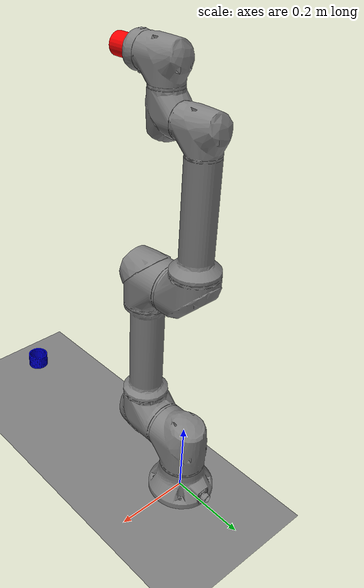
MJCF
<mujoco model="rb5 peg-in-hole scene">

  <include file="rb5_peg_in_hole.xml"/>

  <visual>
    <headlight diffuse="0.7 0.7 0.7"
               ambient="0.35 0.35 0.35"
               specular="0.15 0.15 0.15"/>
    <rgba haze="0.15 0.15 0.15 1"/>
    <global azimuth="135" elevation="-20"/>
    <quality shadowsize="16384"/>
  </visual>

  <asset>
    <texture type="skybox"
             builtin="gradient"
             rgb1="0.85 0.90 0.95"
             rgb2="0.20 0.25 0.35"
             width="512"
             height="3072"/>
  </asset>

  <worldbody>
    <!-- lights -->
    <light name="main_light"
           pos="0.0 -0.2 2.2"
           dir="0.0 -0.1 -1.0"
           directional="true"/>

    <light name="side_light"
           pos="0.8 0.4 1.6"
           dir="-0.4 -0.5 -1.0"
           directional="true"
           diffuse="0.5 0.5 0.5"
           specular="0.1 0.1 0.1"/>

    <!-- cameras -->
    <camera name="overview"
            pos="1.10 0.40 1.35"
            xyaxes="0 -1 0 0 0 1"/>

    <camera name="hole_closeup"
            pos="0.35 -0.30 0.85"
            xyaxes="0 -1 0 0 0 1"/>

    <!-- visual only -->
    <geom name="hole_block_visual"
            type="box"
            pos="0.00 -0.68 0.0"
            quat="0.70710678 0.70710678 0 0"
            size="0.030 0.020 0.030"
            rgba="0.70 0.70 0.75 0.0"
            contype="0"
            conaffinity="0"/>

    <!-- 32-gon collision hole -->
    <body name="hole_collision"
          pos="0.00 -0.68 0.0"
          quat="0.70710678 0.70710678 0 0">

      <geom name="hole_seg_00" type="box" pos="0.000000 0.020000 0.027750" quat="1.000000 0 0.000000 0" size="0.0028 0.0200 0.00225" rgba="0 0 1 1" contype="2" conaffinity="1" margin="0.0" friction="1.0 0.005 0.0001"/>
      <geom name="hole_seg_01" type="box" pos="0.005414 0.020000 0.027217" quat="0.995185 0 0.098017 0" size="0.0028 0.0200 0.00225" rgba="0 0 1 1" contype="2" conaffinity="1" margin="0.0" friction="1.0 0.005 0.0001"/>
      <geom name="hole_seg_02" type="box" pos="0.010619 0.020000 0.025638" quat="0.980785 0 0.195090 0" size="0.0028 0.0200 0.00225" rgba="0 0 1 1" contype="2" conaffinity="1" margin="0.0" friction="1.0 0.005 0.0001"/>
      <geom name="hole_seg_03" type="box" pos="0.015417 0.020000 0.023073" quat="0.956940 0 0.290285 0" size="0.0028 0.0200 0.00225" rgba="0 0 1 1" contype="2" conaffinity="1" margin="0.0" friction="1.0 0.005 0.0001"/>
      <geom name="hole_seg_04" type="box" pos="0.019622 0.020000 0.019622" quat="0.923880 0 0.382683 0" size="0.0028 0.0200 0.00225" rgba="0 0 1 1" contype="2" conaffinity="1" margin="0.0" friction="1.0 0.005 0.0001"/>
      <geom name="hole_seg_05" type="box" pos="0.023073 0.020000 0.015417" quat="0.881921 0 0.471397 0" size="0.0028 0.0200 0.00225" rgba="0 0 1 1" contype="2" conaffinity="1" margin="0.0" friction="1.0 0.005 0.0001"/>
      <geom name="hole_seg_06" type="box" pos="0.025638 0.020000 0.010619" quat="0.831470 0 0.555570 0" size="0.0028 0.0200 0.00225" rgba="0 0 1 1" contype="2" conaffinity="1" margin="0.0" friction="1.0 0.005 0.0001"/>
      <geom name="hole_seg_07" type="box" pos="0.027217 0.020000 0.005414" quat="0.773010 0 0.634393 0" size="0.0028 0.0200 0.00225" rgba="0 0 1 1" contype="2" conaffinity="1" margin="0.0" friction="1.0 0.005 0.0001"/>
      <geom name="hole_seg_08" type="box" pos="0.027750 0.020000 0.000000" quat="0.707107 0 0.707107 0" size="0.0028 0.0200 0.00225" rgba="0 0 1 1" contype="2" conaffinity="1" margin="0.0" friction="1.0 0.005 0.0001"/>
      <geom name="hole_seg_09" type="box" pos="0.027217 0.020000 -0.005414" quat="0.634393 0 0.773010 0" size="0.0028 0.0200 0.00225" rgba="0 0 1 1" contype="2" conaffinity="1" margin="0.0" friction="1.0 0.005 0.0001"/>
      <geom name="hole_seg_10" type="box" pos="0.025638 0.020000 -0.010619" quat="0.555570 0 0.831470 0" size="0.0028 0.0200 0.00225" rgba="0 0 1 1" contype="2" conaffinity="1" margin="0.0" friction="1.0 0.005 0.0001"/>
      <geom name="hole_seg_11" type="box" pos="0.023073 0.020000 -0.015417" quat="0.471397 0 0.881921 0" size="0.0028 0.0200 0.00225" rgba="0 0 1 1" contype="2" conaffinity="1" margin="0.0" friction="1.0 0.005 0.0001"/>
      <geom name="hole_seg_12" type="box" pos="0.019622 0.020000 -0.019622" quat="0.382683 0 0.923880 0" size="0.0028 0.0200 0.00225" rgba="0 0 1 1" contype="2" conaffinity="1" margin="0.0" friction="1.0 0.005 0.0001"/>
      <geom name="hole_seg_13" type="box" pos="0.015417 0.020000 -0.023073" quat="0.290285 0 0.956940 0" size="0.0028 0.0200 0.00225" rgba="0 0 1 1" contype="2" conaffinity="1" margin="0.0" friction="1.0 0.005 0.0001"/>
      <geom name="hole_seg_14" type="box" pos="0.010619 0.020000 -0.025638" quat="0.195090 0 0.980785 0" size="0.0028 0.0200 0.00225" rgba="0 0 1 1" contype="2" conaffinity="1" margin="0.0" friction="1.0 0.005 0.0001"/>
      <geom name="hole_seg_15" type="box" pos="0.005414 0.020000 -0.027217" quat="0.098017 0 0.995185 0" size="0.0028 0.0200 0.00225" rgba="0 0 1 1" contype="2" conaffinity="1" margin="0.0" friction="1.0 0.005 0.0001"/>
      <geom name="hole_seg_16" type="box" pos="0.000000 0.020000 -0.027750" quat="0.000000 0 1.000000 0" size="0.0028 0.0200 0.00225" rgba="0 0 1 1" contype="2" conaffinity="1" margin="0.0" friction="1.0 0.005 0.0001"/>
      <geom name="hole_seg_17" type="box" pos="-0.005414 0.020000 -0.027217" quat="-0.098017 0 0.995185 0" size="0.0028 0.0200 0.00225" rgba="0 0 1 1" contype="2" conaffinity="1" margin="0.0" friction="1.0 0.005 0.0001"/>
      <geom name="hole_seg_18" type="box" pos="-0.010619 0.020000 -0.025638" quat="-0.195090 0 0.980785 0" size="0.0028 0.0200 0.00225" rgba="0 0 1 1" contype="2" conaffinity="1" margin="0.0" friction="1.0 0.005 0.0001"/>
      <geom name="hole_seg_19" type="box" pos="-0.015417 0.020000 -0.023073" quat="-0.290285 0 0.956940 0" size="0.0028 0.0200 0.00225" rgba="0 0 1 1" contype="2" conaffinity="1" margin="0.0" friction="1.0 0.005 0.0001"/>
      <geom name="hole_seg_20" type="box" pos="-0.019622 0.020000 -0.019622" quat="-0.382683 0 0.923880 0" size="0.0028 0.0200 0.00225" rgba="0 0 1 1" contype="2" conaffinity="1" margin="0.0" friction="1.0 0.005 0.0001"/>
      <geom name="hole_seg_21" type="box" pos="-0.023073 0.020000 -0.015417" quat="-0.471397 0 0.881921 0" size="0.0028 0.0200 0.00225" rgba="0 0 1 1" contype="2" conaffinity="1" margin="0.0" friction="1.0 0.005 0.0001"/>
      <geom name="hole_seg_22" type="box" pos="-0.025638 0.020000 -0.010619" quat="-0.555570 0 0.831470 0" size="0.0028 0.0200 0.00225" rgba="0 0 1 1" contype="2" conaffinity="1" margin="0.0" friction="1.0 0.005 0.0001"/>
      <geom name="hole_seg_23" type="box" pos="-0.027217 0.020000 -0.005414" quat="-0.634393 0 0.773010 0" size="0.0028 0.0200 0.00225" rgba="0 0 1 1" contype="2" conaffinity="1" margin="0.0" friction="1.0 0.005 0.0001"/>
      <geom name="hole_seg_24" type="box" pos="-0.027750 0.020000 0.000000" quat="-0.707107 0 0.707107 0" size="0.0028 0.0200 0.00225" rgba="0 0 1 1" contype="2" conaffinity="1" margin="0.0" friction="1.0 0.005 0.0001"/>
      <geom name="hole_seg_25" type="box" pos="-0.027217 0.020000 0.005414" quat="-0.773010 0 0.634393 0" size="0.0028 0.0200 0.00225" rgba="0 0 1 1" contype="2" conaffinity="1" margin="0.0" friction="1.0 0.005 0.0001"/>
      <geom name="hole_seg_26" type="box" pos="-0.025638 0.020000 0.010619" quat="-0.831470 0 0.555570 0" size="0.0028 0.0200 0.00225" rgba="0 0 1 1" contype="2" conaffinity="1" margin="0.0" friction="1.0 0.005 0.0001"/>
      <geom name="hole_seg_27" type="box" pos="-0.023073 0.020000 0.015417" quat="-0.881921 0 0.471397 0" size="0.0028 0.0200 0.00225" rgba="0 0 1 1" contype="2" conaffinity="1" margin="0.0" friction="1.0 0.005 0.0001"/>
      <geom name="hole_seg_28" type="box" pos="-0.019622 0.020000 0.019622" quat="-0.923880 0 0.382683 0" size="0.0028 0.0200 0.00225" rgba="0 0 1 1" contype="2" conaffinity="1" margin="0.0" friction="1.0 0.005 0.0001"/>
      <geom name="hole_seg_29" type="box" pos="-0.015417 0.020000 0.023073" quat="-0.956940 0 0.290285 0" size="0.0028 0.0200 0.00225" rgba="0 0 1 1" contype="2" conaffinity="1" margin="0.0" friction="1.0 0.005 0.0001"/>
      <geom name="hole_seg_30" type="box" pos="-0.010619 0.020000 0.025638" quat="-0.980785 0 0.195090 0" size="0.0028 0.0200 0.00225" rgba="0 0 1 1" contype="2" conaffinity="1" margin="0.0" friction="1.0 0.005 0.0001"/>
      <geom name="hole_seg_31" type="box" pos="-0.005414 0.020000 0.027217" quat="-0.995185 0 0.098017 0" size="0.0028 0.0200 0.00225" rgba="0 0 1 1" contype="2" conaffinity="1" margin="0.0" friction="1.0 0.005 0.0001"/>
    </body>

    <!-- hole reference sites -->
    <body name="hole_sites"
          pos="0.00 -0.68 0.0"
          quat="0.70710678 0.70710678 0 0">

      <!-- thickness = 40 mm -->
      <site name="hole_bottom"
            pos="0 0.000 0"
            size="0.003"
            rgba="0 1 1 0"/>

      <site name="hole_center"
            pos="0 0.020 0"
            size="0.003"
            rgba="1 1 0 0"/>

      <site name="hole_entry"
            pos="0 0.040 0"
            size="0.003"
            rgba="0 1 0 0"/>

      <site name="hole_preinsert"
            pos="0 0.070 0"
            size="0.003"
            rgba="1 0 1 0"/>
    </body>
  </worldbody>
</mujoco>

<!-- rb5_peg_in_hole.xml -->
<mujoco model="rb5_850e_peg_in_hole">
  <compiler angle="radian" autolimits="true"/>

  <option timestep="0.001"
          integrator="implicit"
          gravity="0 0 -9.81"
          solver="Newton"
          iterations="200"
          ls_iterations="100"
          noslip_iterations="8"
          impratio="10"
          ccd_iterations="100"
          ccd_tolerance="1e-8">
    <flag multiccd="enable" nativeccd="enable"/>
  </option>

  <asset>
    <mesh name="link0_mesh" file="/home/chu/manipulator_control/rbpodo_ros2/rbpodo_description/meshes/rb5_850e/collision/link0.stl"/>
    <mesh name="link1_mesh" file="/home/chu/manipulator_control/rbpodo_ros2/rbpodo_description/meshes/rb5_850e/collision/link1.stl"/>
    <mesh name="link2_mesh" file="/home/chu/manipulator_control/rbpodo_ros2/rbpodo_description/meshes/rb5_850e/collision/link2.stl"/>
    <mesh name="link3_mesh" file="/home/chu/manipulator_control/rbpodo_ros2/rbpodo_description/meshes/rb5_850e/collision/link3.stl"/>
    <mesh name="link4_mesh" file="/home/chu/manipulator_control/rbpodo_ros2/rbpodo_description/meshes/rb5_850e/collision/link4.stl"/>
    <mesh name="link5_mesh" file="/home/chu/manipulator_control/rbpodo_ros2/rbpodo_description/meshes/rb5_850e/collision/link5.stl"/>
    <mesh name="link6_mesh" file="/home/chu/manipulator_control/rbpodo_ros2/rbpodo_description/meshes/rb5_850e/collision/link6.stl"/>
  </asset>

  <default class="main">
    <geom type="mesh" group="0" contype="1" conaffinity="2"/>
    <joint type="hinge" damping="0.1" armature="0.001"/>
  </default>

  <worldbody>
    <geom name="ground" type="plane" pos="0 0 0" size="5 5 0.1"
          rgba="0.5 0.5 0.5 1"
          friction="1 0.005 0.0001"
          contype="2" conaffinity="1"
          margin="0.001"/>

    <body name="link0" pos="0 0 0">
      <geom type="mesh" mesh="link0_mesh"/>

      <body name="link1" pos="0 0 0.1692" childclass="main">
        <inertial pos="5.7e-05 -0.005795 -0.034516"
                  quat="0.676677 0.181125 -0.183239 0.689729"
                  mass="4.147"
                  diaginertia="0.00940157 0.00878691 0.0073332"/>
        <joint name="base" axis="0 0 1" range="-3.14 3.14"/>
        <geom type="mesh" mesh="link1_mesh"/>

        <body name="link2" pos="0 0 0" childclass="main">
          <inertial pos="-3.7e-05 -0.121603 0.212933"
                    quat="0.999997 0.000348233 7.80187e-05 -0.00223104"
                    mass="9.633"
                    diaginertia="0.392214 0.388915 0.0219492"/>
          <joint name="shoulder" axis="0 1 0" range="-3.14 3.14"/>
          <geom type="mesh" mesh="link2_mesh"/>

          <body name="link3" pos="0 0 0.425" childclass="main">
            <inertial pos="2.1e-05 -0.015845 0.202568"
                      quat="0.999948 0.0100341 -5.40187e-05 -0.00170427"
                      mass="3.915"
                      diaginertia="0.11204 0.111832 0.0075271"/>
            <joint name="elbow" axis="0 1 0" range="-3.14 3.14"/>
            <geom type="mesh" mesh="link3_mesh"/>

            <body name="link4" pos="0 0 0.392" childclass="main">
              <inertial pos="5.7e-05 -0.106332 0.025881"
                        quat="0.986693 0.162394 -0.00142514 0.00799378"
                        mass="1.452"
                        diaginertia="0.00162904 0.00160108 0.00118182"/>
              <joint name="wrist1" axis="0 1 0" range="-3.14 3.14"/>
              <geom type="mesh" mesh="link4_mesh"/>

              <body name="link5" pos="0 -0.1107 0.1107" childclass="main">
                <inertial pos="-2.8e-05 -0.025911 -0.004363"
                          quat="0.812497 0.582798 -0.00662653 0.0123056"
                          mass="1.454"
                          diaginertia="0.00163147 0.00160354 0.00118381"/>
                <joint name="wrist2" axis="0 0 1" range="-3.14 3.14"/>
                <geom type="mesh" mesh="link5_mesh"/>

                <body name="link6" pos="0 0 0" childclass="main">
                  <inertial pos="-2e-06 -0.079964 -0.000494"
                            quat="0.706709 -0.0427371 -0.0387873 0.705146"
                            mass="0.243"
                            diaginertia="0.000243707 0.000147897 0.000142261"/>
                  <joint name="wrist3" axis="0 1 0" range="-3.14 3.14"/>
                  <geom type="mesh" mesh="link6_mesh"/>

                  <!-- tool mount at former tool flange position -->
                  <body name="tool_mount" pos="0 -0.0967 0">
                    <inertial pos="0 -0.025 0"
                              mass="0.60"
                              diaginertia="0.00050 0.00040 0.00040"/>

                    <!-- peg is fixed directly to the end-effector.
                         local -Y is insertion direction.
                         diameter = 50 mm, length = 50 mm -->
                    <geom name="peg_geom"
                          type="cylinder"
                          fromto="0 0 0   0 -0.050 0"
                          size="0.0249"
                          mass="0.20"
                          rgba="1 0 0 1"
                          contype="1"
                          conaffinity="3"
                          margin="0.0005"
                          friction="1.2 0.01 0.0001"/>

                    <!-- reference sites -->
                    <site name="tcp"          pos="0  0.000 0" size="0.004"  rgba="1 0 0 1"/>
                    <site name="grasp_center" pos="0  0.000 0" size="0.004"  rgba="0 1 0 1"/>
                    <site name="peg_base"     pos="0  0.000 0" size="0.004"  rgba="1 0 0 1"/>
                    <site name="peg_center"   pos="0 -0.025 0" size="0.004"  rgba="0 1 0 1"/>
                    <site name="peg_tip"      pos="0 -0.050 0" size="0.005"  rgba="0 0 1 0"/>
                  </body>
                </body>
              </body>
            </body>
          </body>
        </body>
      </body>
    </body>
  </worldbody>

  <actuator>
    <motor name="base_motor" joint="base" ctrllimited="true" ctrlrange="-100 100" gear="1"/>
    <motor name="shoulder_motor" joint="shoulder" ctrllimited="true" ctrlrange="-100 100" gear="1"/>
    <motor name="elbow_motor" joint="elbow" ctrllimited="true" ctrlrange="-100 100" gear="1"/>
    <motor name="wrist1_motor" joint="wrist1" ctrllimited="true" ctrlrange="-100 100" gear="1"/>
    <motor name="wrist2_motor" joint="wrist2" ctrllimited="true" ctrlrange="-100 100" gear="1"/>
    <motor name="wrist3_motor" joint="wrist3" ctrllimited="true" ctrlrange="-100 100" gear="1"/>
  </actuator>

  <keyframe>
    <key name="home" qpos="-0.5 0.0 1.0 0.0 0.0 0.0"/>
  </keyframe>
</mujoco>
